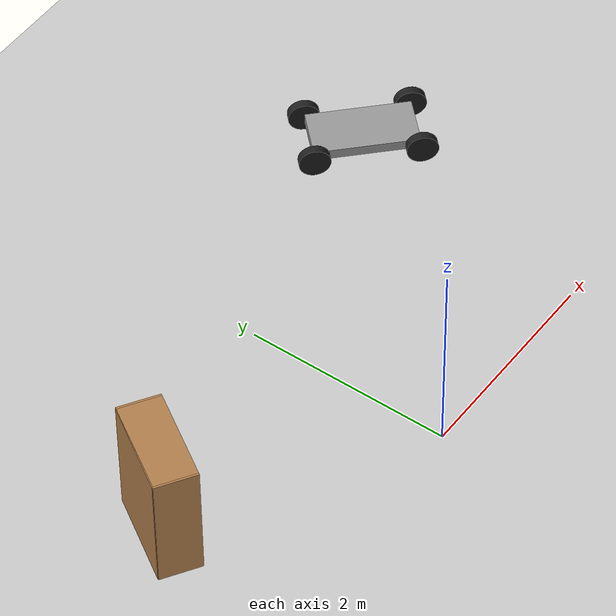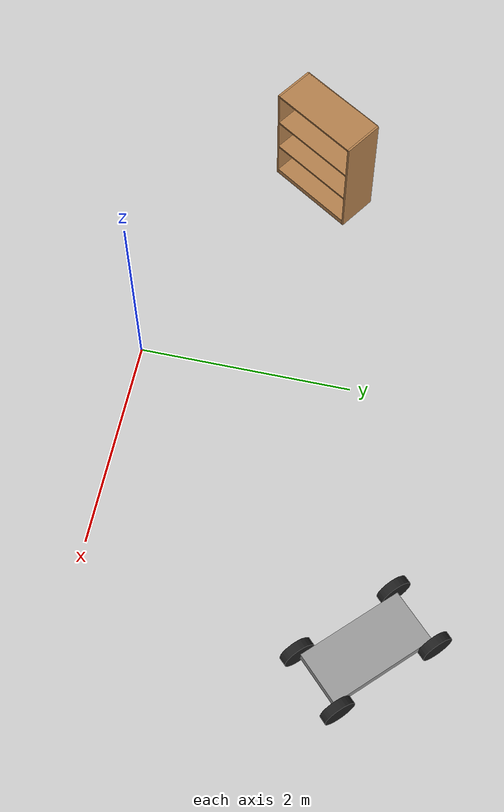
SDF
<sdf version="1.6">
 <world name="default">
  <light name="sun" type="directional">
   <pose>0 0 10 0 -0 0</pose>
   <diffuse>0.8 0.8 0.8 1</diffuse>
   <specular>0.1 0.1 0.1 1</specular>
   <attenuation>
    <range>1000</range>
    <constant>0.9</constant>
    <linear>0.01</linear>
    <quadratic>0.001</quadratic>
   </attenuation>
   <direction>-0.5 0.5 -1</direction>
  </light>
  <model name="ground_plane">
   <static>1</static>
   <link name="link">
    <collision name="collision">
     <geometry><plane><normal>0 0 1</normal><size>100 100</size></plane></geometry>
     <surface><friction><ode><mu>100</mu><mu2>50</mu2></ode></friction></surface>
    </collision>
    <visual name="visual">
     <cast_shadows>0</cast_shadows>
     <geometry><plane><normal>0 0 1</normal><size>100 100</size></plane></geometry>
     <material>
      <script><uri>file://media/materials/scripts/gazebo.material</uri><name>Gazebo/Grey</name></script>
     </material>
    </visual>
   </link>
  </model>
  <gravity>0 0 -9.8</gravity>
  <magnetic_field>6e-06 2.3e-05 -4.2e-05</magnetic_field>
  <atmosphere type="adiabatic"/>
  <physics name="default_physics" default="0" type="ode">
   <max_step_size>0.001</max_step_size>
   <real_time_factor>1</real_time_factor>
   <real_time_update_rate>1000</real_time_update_rate>
  </physics>
  <scene><ambient>0.4 0.4 0.4 1</ambient><background>0.7 0.7 0.7 1</background><shadows>1</shadows></scene>
  <spherical_coordinates>
   <surface_model>EARTH_WGS84</surface_model>
   <latitude_deg>0</latitude_deg>
   <longitude_deg>0</longitude_deg>
   <elevation>0</elevation>
   <heading_deg>0</heading_deg>
  </spherical_coordinates>
  <model name="bookshelf">
   <static>1</static>
   <link name="link">
    <inertial><mass>1</mass></inertial>
    <collision name="back">
     <pose>0 0.005 0.6 0 -0 0</pose>
     <geometry><box><size>0.9 0.01 1.2</size></box></geometry>
    </collision>
    <visual name="visual1">
     <pose>0 0.005 0.6 0 -0 0</pose>
     <geometry><box><size>0.9 0.01 1.2</size></box></geometry>
     <material>
      <script><uri>file://media/materials/scripts/gazebo.material</uri><name>Gazebo/Wood</name></script>
     </material>
    </visual>
    <collision name="left_side">
     <pose>0.45 -0.195 0.6 0 -0 0</pose>
     <geometry><box><size>0.02 0.4 1.2</size></box></geometry>
    </collision>
    <visual name="visual2">
     <pose>0.45 -0.195 0.6 0 -0 0</pose>
     <geometry><box><size>0.02 0.4 1.2</size></box></geometry>
     <material>
      <script><uri>file://media/materials/scripts/gazebo.material</uri><name>Gazebo/Wood</name></script>
     </material>
    </visual>
    <collision name="right_side">
     <pose>-0.45 -0.195 0.6 0 -0 0</pose>
     <geometry><box><size>0.02 0.4 1.2</size></box></geometry>
    </collision>
    <visual name="visual3">
     <pose>-0.45 -0.195 0.6 0 -0 0</pose>
     <geometry><box><size>0.02 0.4 1.2</size></box></geometry>
     <material>
      <script><uri>file://media/materials/scripts/gazebo.material</uri><name>Gazebo/Wood</name></script>
     </material>
    </visual>
    <collision name="bottom">
     <pose>0 -0.195 0.03 0 -0 0</pose>
     <geometry><box><size>0.88 0.4 0.06</size></box></geometry>
    </collision>
    <visual name="visual4">
     <pose>0 -0.195 0.03 0 -0 0</pose>
     <geometry><box><size>0.88 0.4 0.06</size></box></geometry>
     <material>
      <script><uri>file://media/materials/scripts/gazebo.material</uri><name>Gazebo/Wood</name></script>
     </material>
    </visual>
    <collision name="top">
     <pose>0 -0.195 1.19 0 -0 0</pose>
     <geometry><box><size>0.88 0.4 0.02</size></box></geometry>
    </collision>
    <visual name="visual5">
     <pose>0 -0.195 1.19 0 -0 0</pose>
     <geometry><box><size>0.88 0.4 0.02</size></box></geometry>
     <material>
      <script><uri>file://media/materials/scripts/gazebo.material</uri><name>Gazebo/Wood</name></script>
     </material>
    </visual>
    <collision name="low_shelf">
     <pose>0 -0.195 0.43 0 -0 0</pose>
     <geometry><box><size>0.88 0.4 0.02</size></box></geometry>
    </collision>
    <visual name="visual6">
     <pose>0 -0.195 0.43 0 -0 0</pose>
     <geometry><box><size>0.88 0.4 0.02</size></box></geometry>
     <material>
      <script><uri>file://media/materials/scripts/gazebo.material</uri><name>Gazebo/Wood</name></script>
     </material>
    </visual>
    <collision name="high_shelf">
     <pose>0 -0.195 0.8 0 -0 0</pose>
     <geometry><box><size>0.88 0.4 0.02</size></box></geometry>
    </collision>
    <visual name="visual7">
     <pose>0 -0.195 0.8 0 -0 0</pose>
     <geometry><box><size>0.88 0.4 0.02</size></box></geometry>
     <material>
      <script><uri>file://media/materials/scripts/gazebo.material</uri><name>Gazebo/Wood</name></script>
     </material>
    </visual>
   </link>
   <pose>-2.37654 1.42335 0 0 -0 0.996101</pose>
  </model>
  <model name="cart_front_steer">
   <link name="chassis">
    <pose>0 0 0.15 0 -0 0</pose>
    <inertial>
     <pose>0.1 0 0 0 -0 0</pose>
     <mass>10</mass>
     <inertia>
      <ixx>0.216667</ixx>
      <iyy>0.841667</iyy>
      <izz>1.04167</izz>
      <ixy>0</ixy>
      <ixz>0</ixz>
      <iyz>0</iyz>
     </inertia>
    </inertial>
    <collision name="collision"><geometry><box><size>1 0.5 0.1</size></box></geometry></collision>
    <visual name="visual">
     <geometry><box><size>1 0.5 0.1</size></box></geometry>
     <material>
      <script><uri>file://media/materials/scripts/gazebo.material</uri><name>Gazebo/Grey</name></script>
     </material>
    </visual>
   </link>
   <link name="wheel_front_left">
    <pose>0.5 0.298 0.15 -1.5708 -0.087266 0</pose>
    <inertial>
     <mass>0.5</mass>
     <inertia>
      <ixx>0.00307917</ixx>
      <iyy>0.00307917</iyy>
      <izz>0.005625</izz>
      <ixy>0</ixy>
      <ixz>0</ixz>
      <iyz>0</iyz>
     </inertia>
    </inertial>
    <collision name="collision">
     <geometry><cylinder><radius>0.15</radius><length>0.08</length></cylinder></geometry>
    </collision>
    <visual name="visual">
     <geometry><cylinder><radius>0.15</radius><length>0.08</length></cylinder></geometry>
     <material>
      <script><uri>file://media/materials/scripts/gazebo.material</uri><name>Gazebo/Black</name></script>
     </material>
    </visual>
   </link>
   <joint name="wheel_front_left_steer_spin" type="universal">
    <parent>chassis</parent>
    <child>wheel_front_left</child>
    <axis>
     <xyz>0 -1 0</xyz>
     <limit><lower>-0.610865</lower><upper>0.610865</upper></limit>
     <use_parent_model_frame>0</use_parent_model_frame>
     <dynamics><spring_reference>0</spring_reference><spring_stiffness>0</spring_stiffness></dynamics>
    </axis>
    <axis2>
     <xyz>0 0 1</xyz>
     <use_parent_model_frame>0</use_parent_model_frame>
     <dynamics><spring_reference>0</spring_reference><spring_stiffness>0</spring_stiffness></dynamics>
    </axis2>
   </joint>
   <link name="wheel_front_right">
    <pose>0.5 -0.298 0.15 -1.5708 -0.087266 0</pose>
    <inertial>
     <mass>0.5</mass>
     <inertia>
      <ixx>0.00307917</ixx>
      <iyy>0.00307917</iyy>
      <izz>0.005625</izz>
      <ixy>0</ixy>
      <ixz>0</ixz>
      <iyz>0</iyz>
     </inertia>
    </inertial>
    <collision name="collision">
     <geometry><cylinder><radius>0.15</radius><length>0.08</length></cylinder></geometry>
    </collision>
    <visual name="visual">
     <geometry><cylinder><radius>0.15</radius><length>0.08</length></cylinder></geometry>
     <material>
      <script><uri>file://media/materials/scripts/gazebo.material</uri><name>Gazebo/Black</name></script>
     </material>
    </visual>
   </link>
   <joint name="wheel_front_right_steer_spin" type="universal">
    <parent>chassis</parent>
    <child>wheel_front_right</child>
    <axis>
     <xyz>0 -1 0</xyz>
     <limit><lower>-0.610865</lower><upper>0.610865</upper></limit>
     <use_parent_model_frame>0</use_parent_model_frame>
     <dynamics><spring_reference>0</spring_reference><spring_stiffness>0</spring_stiffness></dynamics>
    </axis>
    <axis2>
     <xyz>0 0 1</xyz>
     <use_parent_model_frame>0</use_parent_model_frame>
     <dynamics><spring_reference>0</spring_reference><spring_stiffness>0</spring_stiffness></dynamics>
    </axis2>
   </joint>
   <link name="wheel_rear_left">
    <pose>-0.5 0.298 0.15 -1.5708 0 0</pose>
    <inertial>
     <mass>0.5</mass>
     <inertia>
      <ixx>0.00307917</ixx>
      <iyy>0.00307917</iyy>
      <izz>0.005625</izz>
      <ixy>0</ixy>
      <ixz>0</ixz>
      <iyz>0</iyz>
     </inertia>
    </inertial>
    <collision name="collision">
     <geometry><cylinder><radius>0.15</radius><length>0.08</length></cylinder></geometry>
    </collision>
    <visual name="visual">
     <geometry><cylinder><radius>0.15</radius><length>0.08</length></cylinder></geometry>
     <material>
      <script><uri>file://media/materials/scripts/gazebo.material</uri><name>Gazebo/Black</name></script>
     </material>
    </visual>
   </link>
   <joint name="wheel_rear_left_spin" type="revolute">
    <parent>chassis</parent>
    <child>wheel_rear_left</child>
    <axis>
     <xyz>0 0 1</xyz>
     <use_parent_model_frame>0</use_parent_model_frame>
     <limit><lower>-1e+16</lower><upper>1e+16</upper></limit>
     <dynamics><spring_reference>0</spring_reference><spring_stiffness>0</spring_stiffness></dynamics>
    </axis>
   </joint>
   <link name="wheel_rear_right">
    <pose>-0.5 -0.298 0.15 -1.5708 0 0</pose>
    <inertial>
     <mass>0.5</mass>
     <inertia>
      <ixx>0.00307917</ixx>
      <iyy>0.00307917</iyy>
      <izz>0.005625</izz>
      <ixy>0</ixy>
      <ixz>0</ixz>
      <iyz>0</iyz>
     </inertia>
    </inertial>
    <collision name="collision">
     <geometry><cylinder><radius>0.15</radius><length>0.08</length></cylinder></geometry>
    </collision>
    <visual name="visual">
     <geometry><cylinder><radius>0.15</radius><length>0.08</length></cylinder></geometry>
     <material>
      <script><uri>file://media/materials/scripts/gazebo.material</uri><name>Gazebo/Black</name></script>
     </material>
    </visual>
   </link>
   <joint name="wheel_rear_right_spin" type="revolute">
    <parent>chassis</parent>
    <child>wheel_rear_right</child>
    <axis>
     <xyz>0 0 1</xyz>
     <use_parent_model_frame>0</use_parent_model_frame>
     <limit><lower>-1e+16</lower><upper>1e+16</upper></limit>
     <dynamics><spring_reference>0</spring_reference><spring_stiffness>0</spring_stiffness></dynamics>
    </axis>
   </joint>
   <pose>2.4813 2.60096 0 -1e-06 -0 -0.775616</pose>
  </model>
 </world>
</sdf>
